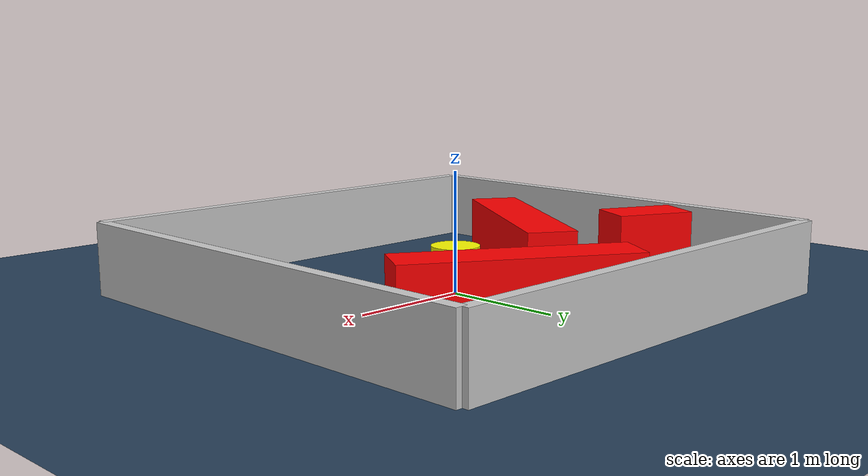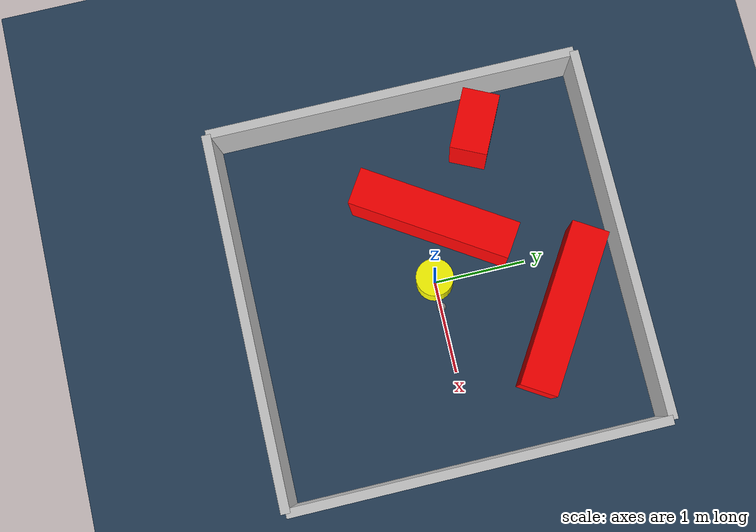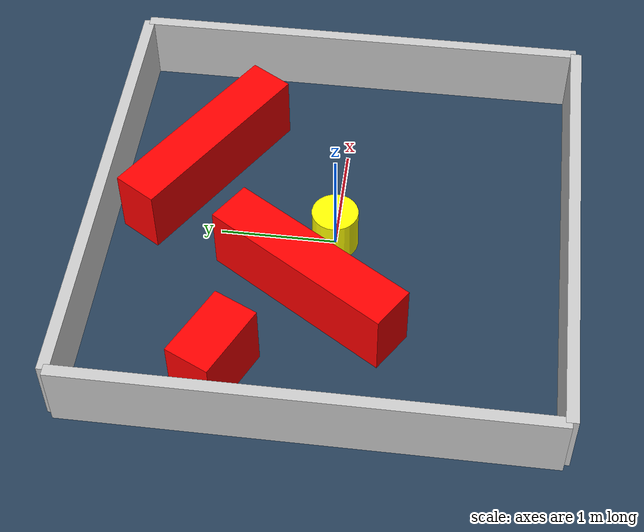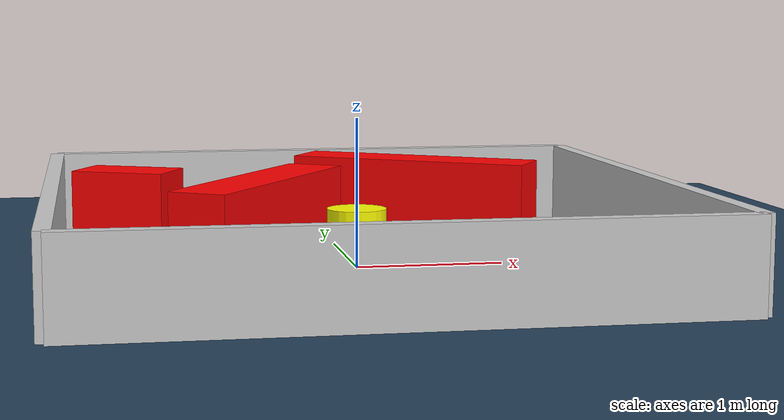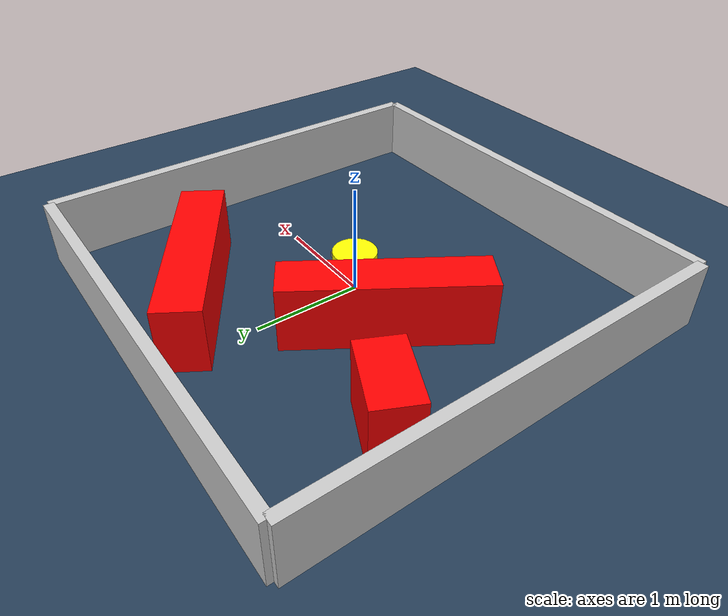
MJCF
<?xml version="1.0" ?>
<mujoco model="generated_environment">
  <option timestep="0.01" integrator="RK4" cone="elliptic"/>
  <default>
    <geom density="1"/>
  </default>
  <asset>
    <texture builtin="gradient" height="3072" rgb1="0.3 0.5 0.7" rgb2="0 0 0" type="skybox" width="512"/>
    <texture builtin="checker" height="300" mark="edge" markrgb="0.8 0.8 0.8" name="groundplane" rgb1="0.2 0.3 0.4" rgb2="0.1 0.2 0.3" type="2d" width="300"/>
    <material name="groundplane" reflectance="0.2" texrepeat="5 5" texture="groundplane" texuniform="true"/>
    <material name="robot" rgba="0.0 1.0 0.0 1"/>
  </asset>
  <worldbody>
    <light dir="0 0 -1" directional="true" pos="0 0 1.5"/>
    <geom condim="4" friction="1.0 0.005 0.001" material="groundplane" name="floor" size="0 0 0.05" type="plane"/>
    <body name="walls">
      <geom name="wall_1" condim="4" pos="-2.0 0.0 0.3" rgba="0.800000011920929 0.800000011920929 0.800000011920929 1.0" size="0.05 2.0 0.3" type="box"/>
      <geom name="wall_2" condim="4" pos="2.0 0.0 0.3" rgba="0.800000011920929 0.800000011920929 0.800000011920929 1.0" size="0.05 2.0 0.3" type="box"/>
      <geom name="wall_3" condim="4" pos="0.0 -2.0 0.3" rgba="0.800000011920929 0.800000011920929 0.800000011920929 1.0" size="2.0 0.05 0.3" type="box"/>
      <geom name="wall_4" condim="4" pos="0.0 2.0 0.3" rgba="0.800000011920929 0.800000011920929 0.800000011920929 1.0" size="2.0 0.05 0.3" type="box"/>
    </body>
    <body name="robot">
      <joint name="joint_x" type="slide" pos="0 0 0" axis="1 0 0"/>
      <joint name="joint_y" type="slide" pos="0 0 0" axis="0 1 0"/>
      <geom name="robot" type="sphere" pos="0.3 0.0 0.2" size="0.05" mass="5." friction="1.0 0.005 0.0001" condim="4" rgba="0.5 0.5 0.5 1.0"/>
      <site name="sensor_ball"/>
    </body>
    <body name="obstacle_movable_1">
      <geom name="obstacle_movable_1" condim="4" pos="0.0 0.0 0.2" euler="0 0 0.0" friction="1.0 0.005 0.001" rgba="1.0 1.0 0.0 1.0" size="0.2 0.2 0.0" type="cylinder" mass="0.1"/>
      <joint type="free"/>
    </body>
    <body name="obstacle_2_static">
      <geom name="obstacle_2_static" condim="4" pos="-0.6319988328068167 0.14333931266738742 0.3" euler="0 0 57.21400578456682" friction="1.0 0.005 0.001" rgba="1 0 0 1" size="0.8806523785939899 0.2 0.3" type="box"/>
    </body>
    <body name="obstacle_3_static">
      <geom name="obstacle_3_static" condim="4" pos="0.6438568706318955 1.2234665684649604 0.3" euler="0 0 148.08663156706808" friction="1.0 0.005 0.001" rgba="1 0 0 1" size="0.895745089808534 0.2 0.3" type="box"/>
    </body>
    <body name="obstacle_4_static">
      <geom name="obstacle_4_static" condim="4" pos="-1.4923257666493874 0.7914901755155694 0.3" euler="0 0 334.2950299958312" friction="1.0 0.005 0.001" rgba="1 0 0 1" size="0.33377683551043313 0.2 0.3" type="box"/>
    </body>
  </worldbody>
  <actuator>
    <motor name="actuator_x" joint="joint_x" gear="1" ctrlrange="-1 1"/>
    <motor name="actuator_y" joint="joint_y" gear="1" ctrlrange="-1 1"/>
  </actuator>
</mujoco>
